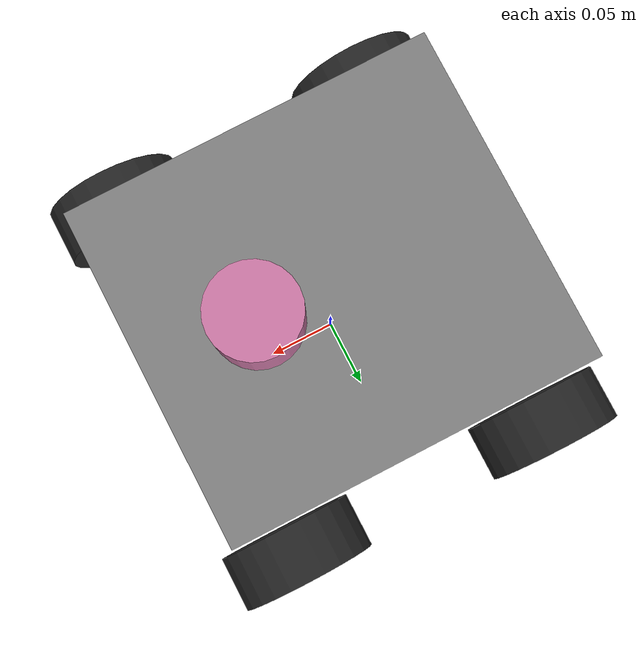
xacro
<?xml version="1.0"?>
<robot name="ugv_pt" xmlns:xacro="http://www.ros.org/wiki/xacro">

  <xacro:property name="base_mass" value="5.0"/>
  <xacro:property name="base_length" value="0.253"/>
  <xacro:property name="base_width" value="0.231"/>
  <xacro:property name="base_height" value="0.15"/>
  <xacro:property name="wheel_radius" value="0.05"/>
  <xacro:property name="wheel_width" value="0.04"/>
  <xacro:property name="wheel_separation" value="0.28"/>
  <!-- Rear driven wheels at -wheel_x_offset, front passive wheels at +wheel_x_offset -->
  <xacro:property name="wheel_x_offset" value="0.10"/>

  <!-- ══ LINKS ══════════════════════════════════════════════════════════ -->

  <!-- base_footprint: 2-D projection of robot on the floor, required by Nav2 -->
  <link name="base_footprint"/>
  <joint name="base_footprint_joint" type="fixed">
    <parent link="base_footprint"/>
    <child link="base_link"/>
    <origin xyz="0 0 0.125" rpy="0 0 0"/>
  </joint>

  <!-- Base body -->
  <link name="base_link">
    <visual>
      <geometry>
        <box size="${base_length} ${base_width} ${base_height}"/>
      </geometry>
      <material name="grey"><color rgba="0.5 0.5 0.5 1.0"/></material>
    </visual>
    <collision>
      <geometry>
        <box size="${base_length} ${base_width} ${base_height}"/>
      </geometry>
    </collision>
    <inertial>
      <mass value="${base_mass}"/>
      <inertia ixx="0.05" ixy="0" ixz="0" iyy="0.05" iyz="0" izz="0.07"/>
    </inertial>
  </link>

  <!-- Rear left wheel (driven by diff-drive) -->
  <link name="rear_left_wheel">
    <visual>
      <geometry><cylinder radius="${wheel_radius}" length="${wheel_width}"/></geometry>
      <material name="dark"><color rgba="0.15 0.15 0.15 1.0"/></material>
    </visual>
    <collision>
      <geometry><cylinder radius="${wheel_radius}" length="${wheel_width}"/></geometry>
    </collision>
    <inertial>
      <mass value="0.5"/>
      <inertia ixx="0.001" ixy="0" ixz="0" iyy="0.001" iyz="0" izz="0.002"/>
    </inertial>
  </link>
  <joint name="rear_left_wheel_joint" type="continuous">
    <parent link="base_link"/>
    <child link="rear_left_wheel"/>
    <origin xyz="-${wheel_x_offset} ${wheel_separation/2} -${base_height/2}" rpy="-1.5708 0 0"/>
    <axis xyz="0 0 1"/>
  </joint>

  <!-- Rear right wheel (driven by diff-drive) -->
  <link name="rear_right_wheel">
    <visual>
      <geometry><cylinder radius="${wheel_radius}" length="${wheel_width}"/></geometry>
      <material name="dark"><color rgba="0.15 0.15 0.15 1.0"/></material>
    </visual>
    <collision>
      <geometry><cylinder radius="${wheel_radius}" length="${wheel_width}"/></geometry>
    </collision>
    <inertial>
      <mass value="0.5"/>
      <inertia ixx="0.001" ixy="0" ixz="0" iyy="0.001" iyz="0" izz="0.002"/>
    </inertial>
  </link>
  <joint name="rear_right_wheel_joint" type="continuous">
    <parent link="base_link"/>
    <child link="rear_right_wheel"/>
    <origin xyz="-${wheel_x_offset} -${wheel_separation/2} -${base_height/2}" rpy="-1.5708 0 0"/>
    <axis xyz="0 0 1"/>
  </joint>

  <!-- Front left wheel (passive — continuous joint, freewheels under ground contact) -->
  <link name="front_left_wheel">
    <visual>
      <geometry><cylinder radius="${wheel_radius}" length="${wheel_width}"/></geometry>
      <material name="dark"><color rgba="0.15 0.15 0.15 1.0"/></material>
    </visual>
    <collision>
      <geometry><cylinder radius="${wheel_radius}" length="${wheel_width}"/></geometry>
    </collision>
    <inertial>
      <mass value="0.5"/>
      <inertia ixx="0.001" ixy="0" ixz="0" iyy="0.001" iyz="0" izz="0.002"/>
    </inertial>
  </link>
  <joint name="front_left_wheel_joint" type="continuous">
    <parent link="base_link"/>
    <child link="front_left_wheel"/>
    <origin xyz="${wheel_x_offset} ${wheel_separation/2} -${base_height/2}" rpy="-1.5708 0 0"/>
    <axis xyz="0 0 1"/>
  </joint>

  <!-- Front right wheel (passive — continuous joint, freewheels under ground contact) -->
  <link name="front_right_wheel">
    <visual>
      <geometry><cylinder radius="${wheel_radius}" length="${wheel_width}"/></geometry>
      <material name="dark"><color rgba="0.15 0.15 0.15 1.0"/></material>
    </visual>
    <collision>
      <geometry><cylinder radius="${wheel_radius}" length="${wheel_width}"/></geometry>
    </collision>
    <inertial>
      <mass value="0.5"/>
      <inertia ixx="0.001" ixy="0" ixz="0" iyy="0.001" iyz="0" izz="0.002"/>
    </inertial>
  </link>
  <joint name="front_right_wheel_joint" type="continuous">
    <parent link="base_link"/>
    <child link="front_right_wheel"/>
    <origin xyz="${wheel_x_offset} -${wheel_separation/2} -${base_height/2}" rpy="-1.5708 0 0"/>
    <axis xyz="0 0 1"/>
  </joint>

  <!-- LiDAR -->
  <link name="lidar_link">
    <visual><geometry><cylinder radius="0.03" length="0.05"/></geometry></visual>
    <collision><geometry><cylinder radius="0.03" length="0.05"/></geometry></collision>
    <inertial>
      <mass value="0.2"/>
      <inertia ixx="0.0001" ixy="0" ixz="0" iyy="0.0001" iyz="0" izz="0.0001"/>
    </inertial>
  </link>
  <joint name="lidar_joint" type="fixed">
    <parent link="base_link"/>
    <child link="lidar_link"/>
    <origin xyz="0.05 0 ${base_height/2 + 0.025}"/>
  </joint>

  <link name="camera_link">
    <inertial>
      <mass value="0.1"/>
      <inertia ixx="0.00001" ixy="0" ixz="0" iyy="0.00001" iyz="0" izz="0.00001"/>
    </inertial>
  </link>
  <joint name="camera_joint" type="fixed">
    <parent link="base_link"/>
    <child link="camera_link"/>
    <origin xyz="${base_length/2} 0 ${base_height/2 + 0.015}"/>
  </joint>

  <!-- IMU -->
  <link name="imu_link">
    <inertial>
      <mass value="0.01"/>
      <inertia ixx="0.00001" ixy="0" ixz="0" iyy="0.00001" iyz="0" izz="0.00001"/>
    </inertial>
  </link>
  <joint name="imu_joint" type="fixed">
    <parent link="base_link"/>
    <child link="imu_link"/>
    <origin xyz="0 0 0.05" rpy="0 0 0"/>
  </joint>

  <gazebo reference="imu_link">
    <sensor name="imu" type="imu">
      <topic>/robot_001/imu/data</topic>
      <update_rate>200</update_rate>
      <always_on>true</always_on>
    </sensor>
  </gazebo>

  <gazebo reference="base_link">
    <material>
      <ambient>0.40 0.40 0.40 1</ambient>
      <diffuse>0.55 0.55 0.55 1</diffuse>
      <specular>0.05 0.05 0.05 1</specular>
    </material>
  </gazebo>

  <gazebo reference="rear_left_wheel">
    <material>
      <ambient>0.10 0.10 0.10 1</ambient>
      <diffuse>0.18 0.18 0.18 1</diffuse>
    </material>
  </gazebo>
  <gazebo reference="rear_right_wheel">
    <material>
      <ambient>0.10 0.10 0.10 1</ambient>
      <diffuse>0.18 0.18 0.18 1</diffuse>
    </material>
  </gazebo>
  <gazebo reference="front_left_wheel">
    <material>
      <ambient>0.10 0.10 0.10 1</ambient>
      <diffuse>0.18 0.18 0.18 1</diffuse>
    </material>
  </gazebo>
  <gazebo reference="front_right_wheel">
    <material>
      <ambient>0.10 0.10 0.10 1</ambient>
      <diffuse>0.18 0.18 0.18 1</diffuse>
    </material>
  </gazebo>
  <gazebo reference="lidar_link">
    <material>
      <ambient>0.15 0.45 0.60 1</ambient>
      <diffuse>0.20 0.60 0.80 1</diffuse>
    </material>
  </gazebo>
  <!-- ══ GAZEBO PLUGINS ══════════════════════════════════════════════════ -->

  <gazebo>
    <plugin filename="gz-sim-diff-drive-system"
            name="gz::sim::systems::DiffDrive">
      <left_joint>rear_left_wheel_joint</left_joint>
      <left_joint>front_left_wheel_joint</left_joint>
      <right_joint>rear_right_wheel_joint</right_joint>
      <right_joint>front_right_wheel_joint</right_joint>
      <wheel_separation>${wheel_separation}</wheel_separation>
      <wheel_radius>${wheel_radius}</wheel_radius>
      <odom_publish_frequency>50</odom_publish_frequency>
      <topic>/robot_001/cmd_vel</topic>
      <odom_topic>/robot_001/odom</odom_topic>
      <tf_topic>/robot_001/wheel_odom_tf_unused</tf_topic>
      <frame_id>odom</frame_id>
      <child_frame_id>base_footprint</child_frame_id>
    </plugin>

    <plugin filename="gz-sim-pose-publisher-system"
            name="gz::sim::systems::PosePublisher">
      <publish_link_pose>true</publish_link_pose>
      <publish_model_pose>true</publish_model_pose>
      <use_pose_vector_msg>true</use_pose_vector_msg>
      <static_publisher>false</static_publisher>
      <update_frequency>10</update_frequency>
    </plugin>
  </gazebo>

  <!-- ══ SENSORS ═════════════════════════════════════════════════════════ -->

  <gazebo reference="lidar_link">
    <sensor name="lidar" type="gpu_lidar">
      <topic>/robot_001/scan</topic>
      <update_rate>10</update_rate>
      <ray>
        <scan>
          <horizontal>
            <samples>360</samples>
            <resolution>1</resolution>
            <min_angle>-3.14159</min_angle>
            <max_angle>3.14159</max_angle>
          </horizontal>
        </scan>
        <range>
          <min>0.12</min>
          <max>12.0</max>
        </range>
        <noise>
          <type>gaussian</type>
          <mean>0.0</mean>
          <stddev>0.01</stddev>
        </noise>
      </ray>
      <always_on>1</always_on>
      <visualize>true</visualize>
    </sensor>
  </gazebo>

  <gazebo reference="camera_link">
    <sensor name="camera" type="camera">
      <topic>/robot_001/camera/image_raw</topic>
      <update_rate>10</update_rate>
      <camera>
        <horizontal_fov>1.047</horizontal_fov>
        <image>
          <width>640</width>
          <height>480</height>
          <format>R8G8B8</format>
        </image>
        <clip><near>0.1</near><far>100</far></clip>
      </camera>
      <always_on>1</always_on>
    </sensor>
  </gazebo>

</robot>
